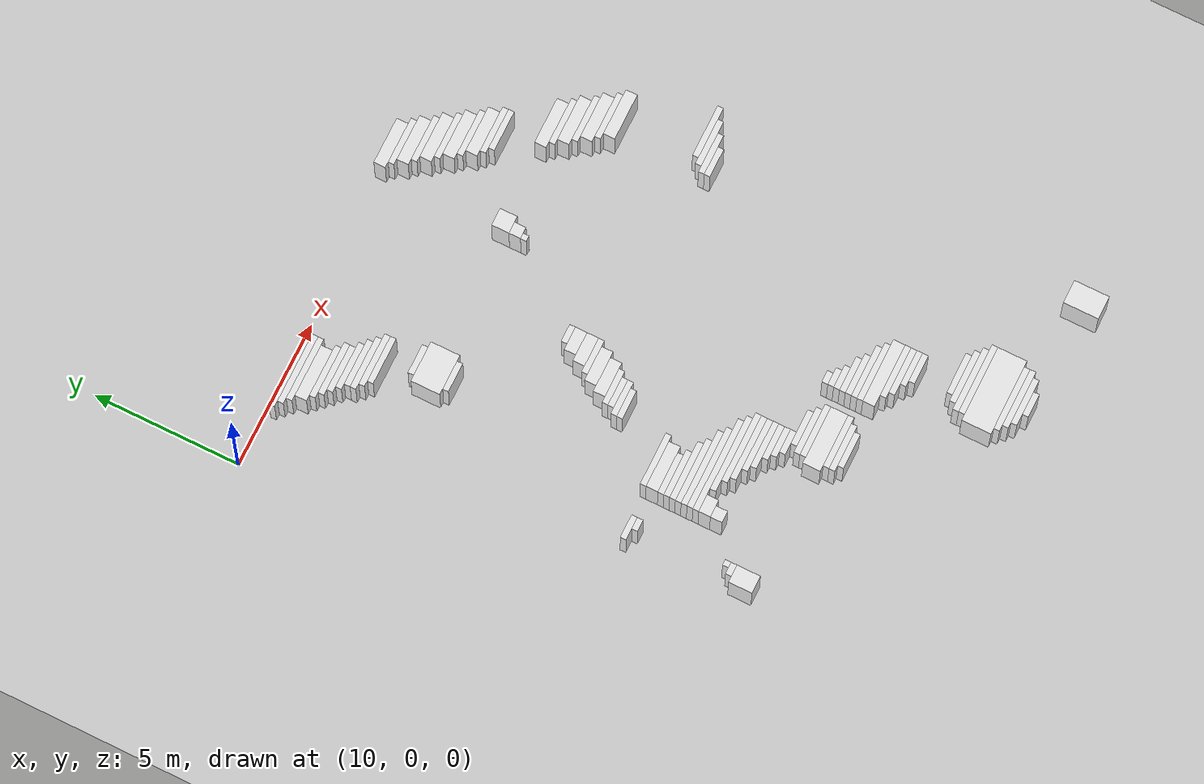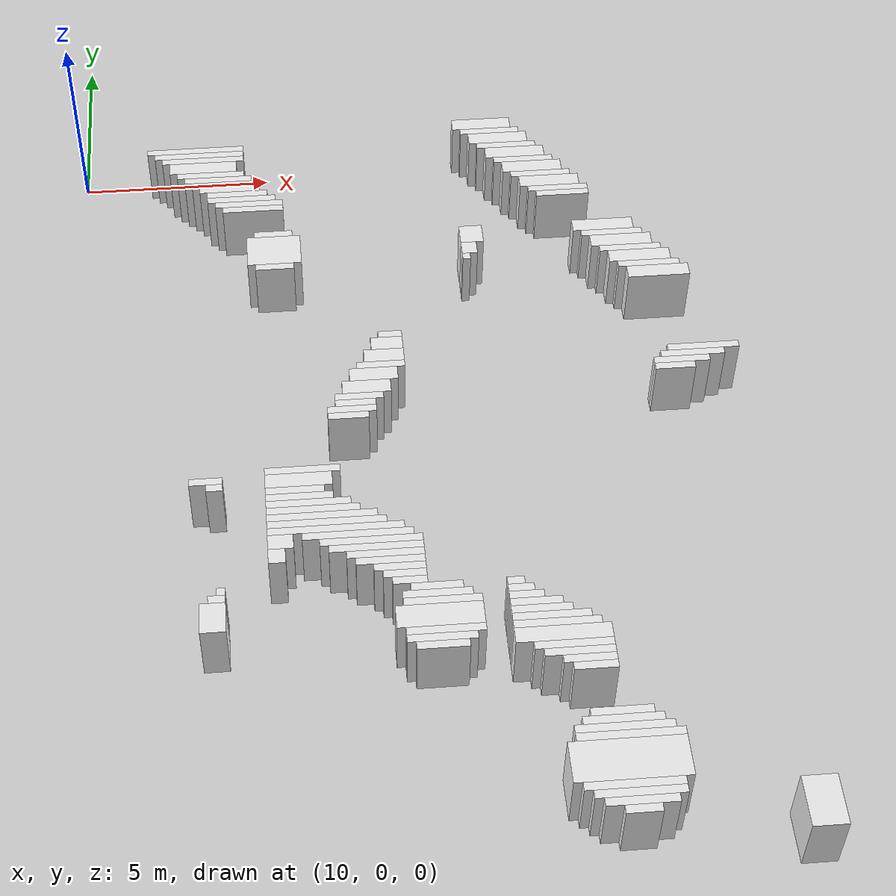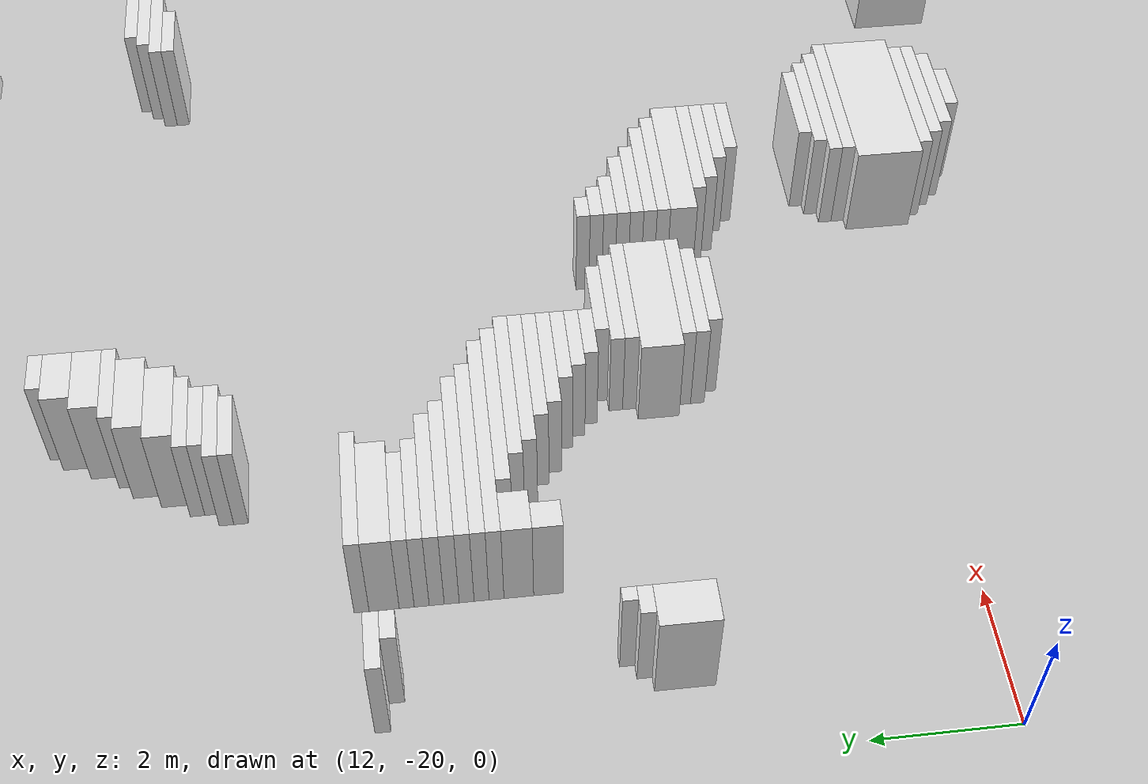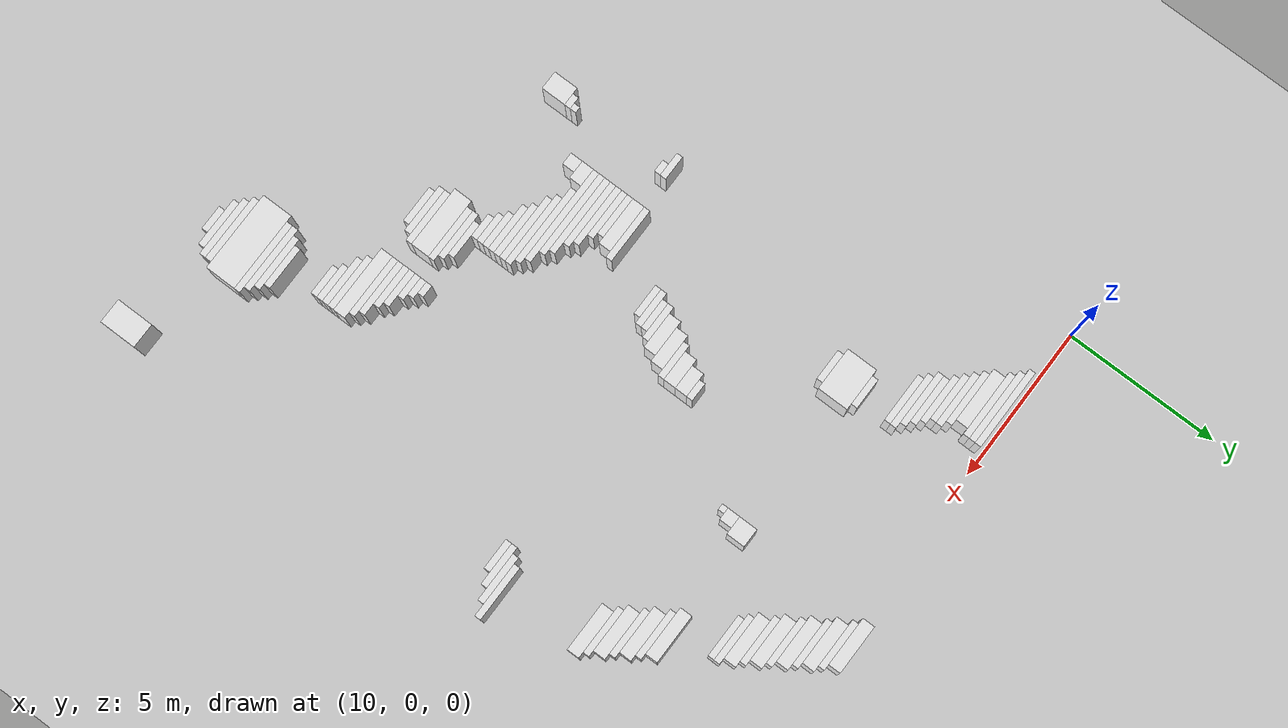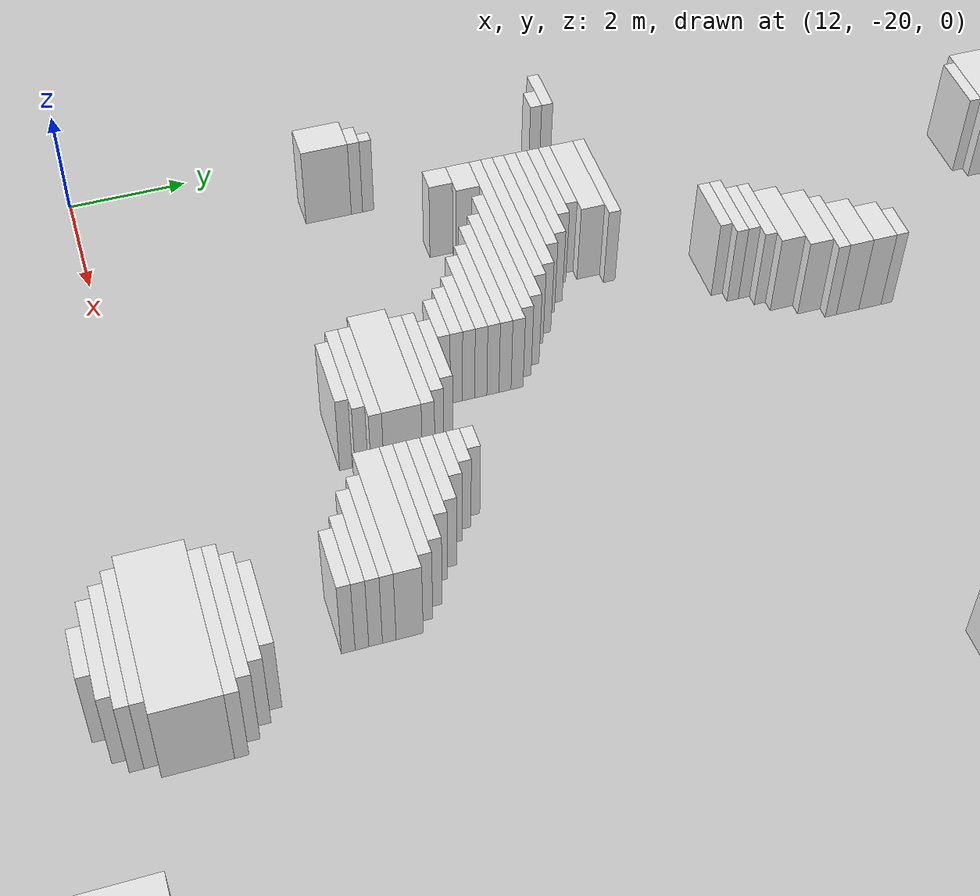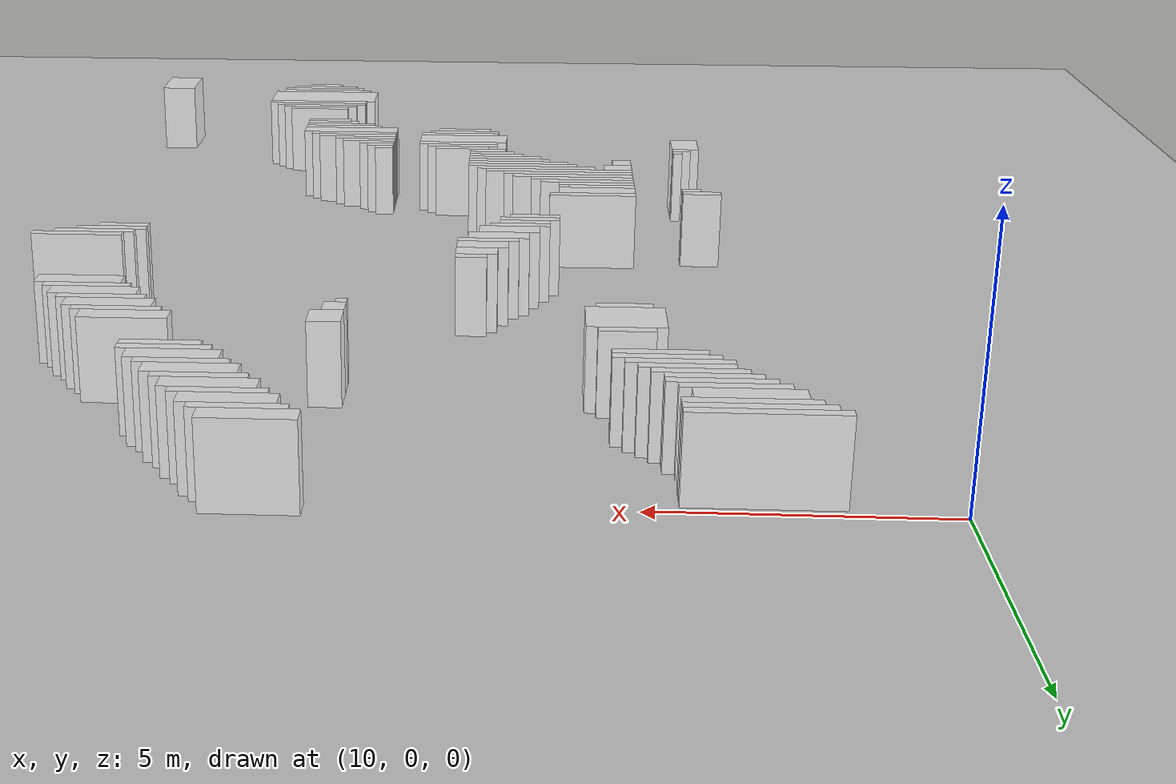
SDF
<sdf version="1.7">
 <world name="default">
  <model name="ground_plane">
   <static>1</static>
   <link name="link">
    <collision name="collision">
     <geometry><plane><normal>0 0 1</normal><size>120 120</size></plane></geometry>
    </collision>
    <visual name="visual">
     <geometry><plane><normal>0 0 1</normal><size>120 120</size></plane></geometry>
     <material>
      <script><uri>file://media/materials/scripts/gazebo.material</uri><name>Gazebo/Grey</name></script>
     </material>
    </visual>
   </link>
  </model>
  <model name="random_complex_03_model">
   <static>1</static>
   <link name="obs_1621">
    <pose>21.0000 0.2000 0.8000 0 0 0</pose>
    <collision name="obs_1621_col"><geometry><box><size>1.6000 0.4000 1.6000</size></box></geometry></collision>
    <visual name="obs_1621_vis">
     <geometry><box><size>1.6000 0.4000 1.6000</size></box></geometry>
     <material>
      <script><uri>file://media/materials/scripts/gazebo.material</uri><name>Gazebo/White</name></script>
     </material>
    </visual>
   </link>
   <link name="obs_1634">
    <pose>21.2000 -0.1000 0.8000 0 0 0</pose>
    <collision name="obs_1634_col"><geometry><box><size>1.6000 0.2000 1.6000</size></box></geometry></collision>
    <visual name="obs_1634_vis">
     <geometry><box><size>1.6000 0.2000 1.6000</size></box></geometry>
     <material>
      <script><uri>file://media/materials/scripts/gazebo.material</uri><name>Gazebo/White</name></script>
     </material>
    </visual>
   </link>
   <link name="obs_1642">
    <pose>13.1000 -0.3000 0.8000 0 0 0</pose>
    <collision name="obs_1642_col"><geometry><box><size>2.6000 0.2000 1.6000</size></box></geometry></collision>
    <visual name="obs_1642_vis">
     <geometry><box><size>2.6000 0.2000 1.6000</size></box></geometry>
     <material>
      <script><uri>file://media/materials/scripts/gazebo.material</uri><name>Gazebo/White</name></script>
     </material>
    </visual>
   </link>
   <link name="obs_1645">
    <pose>21.4000 -0.4000 0.8000 0 0 0</pose>
    <collision name="obs_1645_col"><geometry><box><size>1.6000 0.4000 1.6000</size></box></geometry></collision>
    <visual name="obs_1645_vis">
     <geometry><box><size>1.6000 0.4000 1.6000</size></box></geometry>
     <material>
      <script><uri>file://media/materials/scripts/gazebo.material</uri><name>Gazebo/White</name></script>
     </material>
    </visual>
   </link>
   <link name="obs_1651">
    <pose>13.2000 -0.5000 0.8000 0 0 0</pose>
    <collision name="obs_1651_col"><geometry><box><size>2.4000 0.2000 1.6000</size></box></geometry></collision>
    <visual name="obs_1651_vis">
     <geometry><box><size>2.4000 0.2000 1.6000</size></box></geometry>
     <material>
      <script><uri>file://media/materials/scripts/gazebo.material</uri><name>Gazebo/White</name></script>
     </material>
    </visual>
   </link>
   <link name="obs_1659">
    <pose>13.3000 -0.7000 0.8000 0 0 0</pose>
    <collision name="obs_1659_col"><geometry><box><size>2.2000 0.2000 1.6000</size></box></geometry></collision>
    <visual name="obs_1659_vis">
     <geometry><box><size>2.2000 0.2000 1.6000</size></box></geometry>
     <material>
      <script><uri>file://media/materials/scripts/gazebo.material</uri><name>Gazebo/White</name></script>
     </material>
    </visual>
   </link>
   <link name="obs_1660">
    <pose>21.6000 -0.7000 0.8000 0 0 0</pose>
    <collision name="obs_1660_col"><geometry><box><size>1.6000 0.2000 1.6000</size></box></geometry></collision>
    <visual name="obs_1660_vis">
     <geometry><box><size>1.6000 0.2000 1.6000</size></box></geometry>
     <material>
      <script><uri>file://media/materials/scripts/gazebo.material</uri><name>Gazebo/White</name></script>
     </material>
    </visual>
   </link>
   <link name="obs_1673">
    <pose>13.3000 -1.0000 0.8000 0 0 0</pose>
    <collision name="obs_1673_col"><geometry><box><size>1.8000 0.4000 1.6000</size></box></geometry></collision>
    <visual name="obs_1673_vis">
     <geometry><box><size>1.8000 0.4000 1.6000</size></box></geometry>
     <material>
      <script><uri>file://media/materials/scripts/gazebo.material</uri><name>Gazebo/White</name></script>
     </material>
    </visual>
   </link>
   <link name="obs_1674">
    <pose>21.8000 -1.0000 0.8000 0 0 0</pose>
    <collision name="obs_1674_col"><geometry><box><size>1.6000 0.4000 1.6000</size></box></geometry></collision>
    <visual name="obs_1674_vis">
     <geometry><box><size>1.6000 0.4000 1.6000</size></box></geometry>
     <material>
      <script><uri>file://media/materials/scripts/gazebo.material</uri><name>Gazebo/White</name></script>
     </material>
    </visual>
   </link>
   <link name="obs_1689">
    <pose>13.5000 -1.3000 0.8000 0 0 0</pose>
    <collision name="obs_1689_col"><geometry><box><size>1.8000 0.2000 1.6000</size></box></geometry></collision>
    <visual name="obs_1689_vis">
     <geometry><box><size>1.8000 0.2000 1.6000</size></box></geometry>
     <material>
      <script><uri>file://media/materials/scripts/gazebo.material</uri><name>Gazebo/White</name></script>
     </material>
    </visual>
   </link>
   <link name="obs_1690">
    <pose>22.0000 -1.3000 0.8000 0 0 0</pose>
    <collision name="obs_1690_col"><geometry><box><size>1.6000 0.2000 1.6000</size></box></geometry></collision>
    <visual name="obs_1690_vis">
     <geometry><box><size>1.6000 0.2000 1.6000</size></box></geometry>
     <material>
      <script><uri>file://media/materials/scripts/gazebo.material</uri><name>Gazebo/White</name></script>
     </material>
    </visual>
   </link>
   <link name="obs_1701">
    <pose>13.7000 -1.5000 0.8000 0 0 0</pose>
    <collision name="obs_1701_col"><geometry><box><size>1.8000 0.2000 1.6000</size></box></geometry></collision>
    <visual name="obs_1701_vis">
     <geometry><box><size>1.8000 0.2000 1.6000</size></box></geometry>
     <material>
      <script><uri>file://media/materials/scripts/gazebo.material</uri><name>Gazebo/White</name></script>
     </material>
    </visual>
   </link>
   <link name="obs_1706">
    <pose>22.2000 -1.6000 0.8000 0 0 0</pose>
    <collision name="obs_1706_col"><geometry><box><size>1.6000 0.4000 1.6000</size></box></geometry></collision>
    <visual name="obs_1706_vis">
     <geometry><box><size>1.6000 0.4000 1.6000</size></box></geometry>
     <material>
      <script><uri>file://media/materials/scripts/gazebo.material</uri><name>Gazebo/White</name></script>
     </material>
    </visual>
   </link>
   <link name="obs_1711">
    <pose>13.8000 -1.7000 0.8000 0 0 0</pose>
    <collision name="obs_1711_col"><geometry><box><size>1.6000 0.2000 1.6000</size></box></geometry></collision>
    <visual name="obs_1711_vis">
     <geometry><box><size>1.6000 0.2000 1.6000</size></box></geometry>
     <material>
      <script><uri>file://media/materials/scripts/gazebo.material</uri><name>Gazebo/White</name></script>
     </material>
    </visual>
   </link>
   <link name="obs_1718">
    <pose>14.0000 -1.9000 0.8000 0 0 0</pose>
    <collision name="obs_1718_col"><geometry><box><size>1.6000 0.2000 1.6000</size></box></geometry></collision>
    <visual name="obs_1718_vis">
     <geometry><box><size>1.6000 0.2000 1.6000</size></box></geometry>
     <material>
      <script><uri>file://media/materials/scripts/gazebo.material</uri><name>Gazebo/White</name></script>
     </material>
    </visual>
   </link>
   <link name="obs_1719">
    <pose>22.4000 -1.9000 0.8000 0 0 0</pose>
    <collision name="obs_1719_col"><geometry><box><size>1.6000 0.2000 1.6000</size></box></geometry></collision>
    <visual name="obs_1719_vis">
     <geometry><box><size>1.6000 0.2000 1.6000</size></box></geometry>
     <material>
      <script><uri>file://media/materials/scripts/gazebo.material</uri><name>Gazebo/White</name></script>
     </material>
    </visual>
   </link>
   <link name="obs_1727">
    <pose>14.2000 -2.1000 0.8000 0 0 0</pose>
    <collision name="obs_1727_col"><geometry><box><size>1.6000 0.2000 1.6000</size></box></geometry></collision>
    <visual name="obs_1727_vis">
     <geometry><box><size>1.6000 0.2000 1.6000</size></box></geometry>
     <material>
      <script><uri>file://media/materials/scripts/gazebo.material</uri><name>Gazebo/White</name></script>
     </material>
    </visual>
   </link>
   <link name="obs_1732">
    <pose>22.6000 -2.2000 0.8000 0 0 0</pose>
    <collision name="obs_1732_col"><geometry><box><size>1.6000 0.4000 1.6000</size></box></geometry></collision>
    <visual name="obs_1732_vis">
     <geometry><box><size>1.6000 0.4000 1.6000</size></box></geometry>
     <material>
      <script><uri>file://media/materials/scripts/gazebo.material</uri><name>Gazebo/White</name></script>
     </material>
    </visual>
   </link>
   <link name="obs_1737">
    <pose>14.3000 -2.3000 0.8000 0 0 0</pose>
    <collision name="obs_1737_col"><geometry><box><size>1.8000 0.2000 1.6000</size></box></geometry></collision>
    <visual name="obs_1737_vis">
     <geometry><box><size>1.8000 0.2000 1.6000</size></box></geometry>
     <material>
      <script><uri>file://media/materials/scripts/gazebo.material</uri><name>Gazebo/White</name></script>
     </material>
    </visual>
   </link>
   <link name="obs_1746">
    <pose>14.5000 -2.5000 0.8000 0 0 0</pose>
    <collision name="obs_1746_col"><geometry><box><size>1.8000 0.2000 1.6000</size></box></geometry></collision>
    <visual name="obs_1746_vis">
     <geometry><box><size>1.8000 0.2000 1.6000</size></box></geometry>
     <material>
      <script><uri>file://media/materials/scripts/gazebo.material</uri><name>Gazebo/White</name></script>
     </material>
    </visual>
   </link>
   <link name="obs_1747">
    <pose>22.8000 -2.5000 0.8000 0 0 0</pose>
    <collision name="obs_1747_col"><geometry><box><size>1.6000 0.2000 1.6000</size></box></geometry></collision>
    <visual name="obs_1747_vis">
     <geometry><box><size>1.6000 0.2000 1.6000</size></box></geometry>
     <material>
      <script><uri>file://media/materials/scripts/gazebo.material</uri><name>Gazebo/White</name></script>
     </material>
    </visual>
   </link>
   <link name="obs_1753">
    <pose>14.6000 -2.7000 0.8000 0 0 0</pose>
    <collision name="obs_1753_col"><geometry><box><size>1.6000 0.2000 1.6000</size></box></geometry></collision>
    <visual name="obs_1753_vis">
     <geometry><box><size>1.6000 0.2000 1.6000</size></box></geometry>
     <material>
      <script><uri>file://media/materials/scripts/gazebo.material</uri><name>Gazebo/White</name></script>
     </material>
    </visual>
   </link>
   <link name="obs_1754">
    <pose>22.9000 -2.7000 0.8000 0 0 0</pose>
    <collision name="obs_1754_col"><geometry><box><size>1.4000 0.2000 1.6000</size></box></geometry></collision>
    <visual name="obs_1754_vis">
     <geometry><box><size>1.4000 0.2000 1.6000</size></box></geometry>
     <material>
      <script><uri>file://media/materials/scripts/gazebo.material</uri><name>Gazebo/White</name></script>
     </material>
    </visual>
   </link>
   <link name="obs_1779">
    <pose>15.1000 -3.7000 0.8000 0 0 0</pose>
    <collision name="obs_1779_col"><geometry><box><size>1.0000 0.2000 1.6000</size></box></geometry></collision>
    <visual name="obs_1779_vis">
     <geometry><box><size>1.0000 0.2000 1.6000</size></box></geometry>
     <material>
      <script><uri>file://media/materials/scripts/gazebo.material</uri><name>Gazebo/White</name></script>
     </material>
    </visual>
   </link>
   <link name="obs_1784">
    <pose>23.8000 -4.0000 0.8000 0 0 0</pose>
    <collision name="obs_1784_col"><geometry><box><size>1.6000 0.4000 1.6000</size></box></geometry></collision>
    <visual name="obs_1784_vis">
     <geometry><box><size>1.6000 0.4000 1.6000</size></box></geometry>
     <material>
      <script><uri>file://media/materials/scripts/gazebo.material</uri><name>Gazebo/White</name></script>
     </material>
    </visual>
   </link>
   <link name="obs_1788">
    <pose>20.3000 -4.1000 0.8000 0 0 0</pose>
    <collision name="obs_1788_col"><geometry><box><size>0.6000 0.6000 1.6000</size></box></geometry></collision>
    <visual name="obs_1788_vis">
     <geometry><box><size>0.6000 0.6000 1.6000</size></box></geometry>
     <material>
      <script><uri>file://media/materials/scripts/gazebo.material</uri><name>Gazebo/White</name></script>
     </material>
    </visual>
   </link>
   <link name="obs_1789">
    <pose>24.0000 -4.3000 0.8000 0 0 0</pose>
    <collision name="obs_1789_col"><geometry><box><size>1.6000 0.2000 1.6000</size></box></geometry></collision>
    <visual name="obs_1789_vis">
     <geometry><box><size>1.6000 0.2000 1.6000</size></box></geometry>
     <material>
      <script><uri>file://media/materials/scripts/gazebo.material</uri><name>Gazebo/White</name></script>
     </material>
    </visual>
   </link>
   <link name="obs_1797">
    <pose>15.1000 -4.3000 0.8000 0 0 0</pose>
    <collision name="obs_1797_col"><geometry><box><size>1.4000 1.0000 1.6000</size></box></geometry></collision>
    <visual name="obs_1797_vis">
     <geometry><box><size>1.4000 1.0000 1.6000</size></box></geometry>
     <material>
      <script><uri>file://media/materials/scripts/gazebo.material</uri><name>Gazebo/White</name></script>
     </material>
    </visual>
   </link>
   <link name="obs_1800">
    <pose>20.2000 -4.6000 0.8000 0 0 0</pose>
    <collision name="obs_1800_col"><geometry><box><size>0.4000 0.4000 1.6000</size></box></geometry></collision>
    <visual name="obs_1800_vis">
     <geometry><box><size>0.4000 0.4000 1.6000</size></box></geometry>
     <material>
      <script><uri>file://media/materials/scripts/gazebo.material</uri><name>Gazebo/White</name></script>
     </material>
    </visual>
   </link>
   <link name="obs_1801">
    <pose>24.2000 -4.6000 0.8000 0 0 0</pose>
    <collision name="obs_1801_col"><geometry><box><size>1.6000 0.4000 1.6000</size></box></geometry></collision>
    <visual name="obs_1801_vis">
     <geometry><box><size>1.6000 0.4000 1.6000</size></box></geometry>
     <material>
      <script><uri>file://media/materials/scripts/gazebo.material</uri><name>Gazebo/White</name></script>
     </material>
    </visual>
   </link>
   <link name="obs_1811">
    <pose>15.1000 -4.9000 0.8000 0 0 0</pose>
    <collision name="obs_1811_col"><geometry><box><size>1.0000 0.2000 1.6000</size></box></geometry></collision>
    <visual name="obs_1811_vis">
     <geometry><box><size>1.0000 0.2000 1.6000</size></box></geometry>
     <material>
      <script><uri>file://media/materials/scripts/gazebo.material</uri><name>Gazebo/White</name></script>
     </material>
    </visual>
   </link>
   <link name="obs_1812">
    <pose>20.1000 -4.9000 0.8000 0 0 0</pose>
    <collision name="obs_1812_col"><geometry><box><size>0.2000 0.2000 1.6000</size></box></geometry></collision>
    <visual name="obs_1812_vis">
     <geometry><box><size>0.2000 0.2000 1.6000</size></box></geometry>
     <material>
      <script><uri>file://media/materials/scripts/gazebo.material</uri><name>Gazebo/White</name></script>
     </material>
    </visual>
   </link>
   <link name="obs_1813">
    <pose>24.4000 -4.9000 0.8000 0 0 0</pose>
    <collision name="obs_1813_col"><geometry><box><size>1.6000 0.2000 1.6000</size></box></geometry></collision>
    <visual name="obs_1813_vis">
     <geometry><box><size>1.6000 0.2000 1.6000</size></box></geometry>
     <material>
      <script><uri>file://media/materials/scripts/gazebo.material</uri><name>Gazebo/White</name></script>
     </material>
    </visual>
   </link>
   <link name="obs_1818">
    <pose>24.6000 -5.2000 0.8000 0 0 0</pose>
    <collision name="obs_1818_col"><geometry><box><size>1.6000 0.4000 1.6000</size></box></geometry></collision>
    <visual name="obs_1818_vis">
     <geometry><box><size>1.6000 0.4000 1.6000</size></box></geometry>
     <material>
      <script><uri>file://media/materials/scripts/gazebo.material</uri><name>Gazebo/White</name></script>
     </material>
    </visual>
   </link>
   <link name="obs_1824">
    <pose>24.8000 -5.5000 0.8000 0 0 0</pose>
    <collision name="obs_1824_col"><geometry><box><size>1.6000 0.2000 1.6000</size></box></geometry></collision>
    <visual name="obs_1824_vis">
     <geometry><box><size>1.6000 0.2000 1.6000</size></box></geometry>
     <material>
      <script><uri>file://media/materials/scripts/gazebo.material</uri><name>Gazebo/White</name></script>
     </material>
    </visual>
   </link>
   <link name="obs_1830">
    <pose>25.0000 -5.8000 0.8000 0 0 0</pose>
    <collision name="obs_1830_col"><geometry><box><size>1.6000 0.4000 1.6000</size></box></geometry></collision>
    <visual name="obs_1830_vis">
     <geometry><box><size>1.6000 0.4000 1.6000</size></box></geometry>
     <material>
      <script><uri>file://media/materials/scripts/gazebo.material</uri><name>Gazebo/White</name></script>
     </material>
    </visual>
   </link>
   <link name="obs_1874">
    <pose>17.9000 -7.5000 0.8000 0 0 0</pose>
    <collision name="obs_1874_col"><geometry><box><size>0.6000 0.2000 1.6000</size></box></geometry></collision>
    <visual name="obs_1874_vis">
     <geometry><box><size>0.6000 0.2000 1.6000</size></box></geometry>
     <material>
      <script><uri>file://media/materials/scripts/gazebo.material</uri><name>Gazebo/White</name></script>
     </material>
    </visual>
   </link>
   <link name="obs_1886">
    <pose>17.8000 -7.8000 0.8000 0 0 0</pose>
    <collision name="obs_1886_col"><geometry><box><size>0.8000 0.4000 1.6000</size></box></geometry></collision>
    <visual name="obs_1886_vis">
     <geometry><box><size>0.8000 0.4000 1.6000</size></box></geometry>
     <material>
      <script><uri>file://media/materials/scripts/gazebo.material</uri><name>Gazebo/White</name></script>
     </material>
    </visual>
   </link>
   <link name="obs_1897">
    <pose>17.7000 -8.2000 0.8000 0 0 0</pose>
    <collision name="obs_1897_col"><geometry><box><size>1.0000 0.4000 1.6000</size></box></geometry></collision>
    <visual name="obs_1897_vis">
     <geometry><box><size>1.0000 0.4000 1.6000</size></box></geometry>
     <material>
      <script><uri>file://media/materials/scripts/gazebo.material</uri><name>Gazebo/White</name></script>
     </material>
    </visual>
   </link>
   <link name="obs_1905">
    <pose>17.6000 -8.5000 0.8000 0 0 0</pose>
    <collision name="obs_1905_col"><geometry><box><size>1.2000 0.2000 1.6000</size></box></geometry></collision>
    <visual name="obs_1905_vis">
     <geometry><box><size>1.2000 0.2000 1.6000</size></box></geometry>
     <material>
      <script><uri>file://media/materials/scripts/gazebo.material</uri><name>Gazebo/White</name></script>
     </material>
    </visual>
   </link>
   <link name="obs_1906">
    <pose>25.7000 -8.5000 0.8000 0 0 0</pose>
    <collision name="obs_1906_col"><geometry><box><size>1.8000 0.2000 1.6000</size></box></geometry></collision>
    <visual name="obs_1906_vis">
     <geometry><box><size>1.8000 0.2000 1.6000</size></box></geometry>
     <material>
      <script><uri>file://media/materials/scripts/gazebo.material</uri><name>Gazebo/White</name></script>
     </material>
    </visual>
   </link>
   <link name="obs_1912">
    <pose>25.4000 -8.7000 0.8000 0 0 0</pose>
    <collision name="obs_1912_col"><geometry><box><size>1.6000 0.2000 1.6000</size></box></geometry></collision>
    <visual name="obs_1912_vis">
     <geometry><box><size>1.6000 0.2000 1.6000</size></box></geometry>
     <material>
      <script><uri>file://media/materials/scripts/gazebo.material</uri><name>Gazebo/White</name></script>
     </material>
    </visual>
   </link>
   <link name="obs_1916">
    <pose>17.4000 -8.8000 0.8000 0 0 0</pose>
    <collision name="obs_1916_col"><geometry><box><size>1.2000 0.4000 1.6000</size></box></geometry></collision>
    <visual name="obs_1916_vis">
     <geometry><box><size>1.2000 0.4000 1.6000</size></box></geometry>
     <material>
      <script><uri>file://media/materials/scripts/gazebo.material</uri><name>Gazebo/White</name></script>
     </material>
    </visual>
   </link>
   <link name="obs_1919">
    <pose>25.1000 -8.9000 0.8000 0 0 0</pose>
    <collision name="obs_1919_col"><geometry><box><size>1.4000 0.2000 1.6000</size></box></geometry></collision>
    <visual name="obs_1919_vis">
     <geometry><box><size>1.4000 0.2000 1.6000</size></box></geometry>
     <material>
      <script><uri>file://media/materials/scripts/gazebo.material</uri><name>Gazebo/White</name></script>
     </material>
    </visual>
   </link>
   <link name="obs_1929">
    <pose>24.9000 -9.1000 0.8000 0 0 0</pose>
    <collision name="obs_1929_col"><geometry><box><size>1.0000 0.2000 1.6000</size></box></geometry></collision>
    <visual name="obs_1929_vis">
     <geometry><box><size>1.0000 0.2000 1.6000</size></box></geometry>
     <material>
      <script><uri>file://media/materials/scripts/gazebo.material</uri><name>Gazebo/White</name></script>
     </material>
    </visual>
   </link>
   <link name="obs_1931">
    <pose>17.2000 -9.2000 0.8000 0 0 0</pose>
    <collision name="obs_1931_col"><geometry><box><size>1.2000 0.4000 1.6000</size></box></geometry></collision>
    <visual name="obs_1931_vis">
     <geometry><box><size>1.2000 0.4000 1.6000</size></box></geometry>
     <material>
      <script><uri>file://media/materials/scripts/gazebo.material</uri><name>Gazebo/White</name></script>
     </material>
    </visual>
   </link>
   <link name="obs_1944">
    <pose>17.0000 -9.5000 0.8000 0 0 0</pose>
    <collision name="obs_1944_col"><geometry><box><size>1.2000 0.2000 1.6000</size></box></geometry></collision>
    <visual name="obs_1944_vis">
     <geometry><box><size>1.2000 0.2000 1.6000</size></box></geometry>
     <material>
      <script><uri>file://media/materials/scripts/gazebo.material</uri><name>Gazebo/White</name></script>
     </material>
    </visual>
   </link>
   <link name="obs_1950">
    <pose>16.9000 -9.7000 0.8000 0 0 0</pose>
    <collision name="obs_1950_col"><geometry><box><size>1.0000 0.2000 1.6000</size></box></geometry></collision>
    <visual name="obs_1950_vis">
     <geometry><box><size>1.0000 0.2000 1.6000</size></box></geometry>
     <material>
      <script><uri>file://media/materials/scripts/gazebo.material</uri><name>Gazebo/White</name></script>
     </material>
    </visual>
   </link>
   <link name="obs_1958">
    <pose>16.8000 -9.9000 0.8000 0 0 0</pose>
    <collision name="obs_1958_col"><geometry><box><size>1.2000 0.2000 1.6000</size></box></geometry></collision>
    <visual name="obs_1958_vis">
     <geometry><box><size>1.2000 0.2000 1.6000</size></box></geometry>
     <material>
      <script><uri>file://media/materials/scripts/gazebo.material</uri><name>Gazebo/White</name></script>
     </material>
    </visual>
   </link>
   <link name="obs_1969">
    <pose>16.7000 -10.1000 0.8000 0 0 0</pose>
    <collision name="obs_1969_col"><geometry><box><size>1.0000 0.2000 1.6000</size></box></geometry></collision>
    <visual name="obs_1969_vis">
     <geometry><box><size>1.0000 0.2000 1.6000</size></box></geometry>
     <material>
      <script><uri>file://media/materials/scripts/gazebo.material</uri><name>Gazebo/White</name></script>
     </material>
    </visual>
   </link>
   <link name="obs_1995">
    <pose>15.5000 -11.7000 0.8000 0 0 0</pose>
    <collision name="obs_1995_col"><geometry><box><size>1.8000 0.2000 1.6000</size></box></geometry></collision>
    <visual name="obs_1995_vis">
     <geometry><box><size>1.8000 0.2000 1.6000</size></box></geometry>
     <material>
      <script><uri>file://media/materials/scripts/gazebo.material</uri><name>Gazebo/White</name></script>
     </material>
    </visual>
   </link>
   <link name="obs_2003">
    <pose>13.2000 -11.9000 0.8000 0 0 0</pose>
    <collision name="obs_2003_col"><geometry><box><size>0.8000 0.2000 1.6000</size></box></geometry></collision>
    <visual name="obs_2003_vis">
     <geometry><box><size>0.8000 0.2000 1.6000</size></box></geometry>
     <material>
      <script><uri>file://media/materials/scripts/gazebo.material</uri><name>Gazebo/White</name></script>
     </material>
    </visual>
   </link>
   <link name="obs_2006">
    <pose>15.4000 -12.0000 0.8000 0 0 0</pose>
    <collision name="obs_2006_col"><geometry><box><size>1.6000 0.4000 1.6000</size></box></geometry></collision>
    <visual name="obs_2006_vis">
     <geometry><box><size>1.6000 0.4000 1.6000</size></box></geometry>
     <material>
      <script><uri>file://media/materials/scripts/gazebo.material</uri><name>Gazebo/White</name></script>
     </material>
    </visual>
   </link>
   <link name="obs_2013">
    <pose>13.4000 -12.1000 0.8000 0 0 0</pose>
    <collision name="obs_2013_col"><geometry><box><size>0.4000 0.2000 1.6000</size></box></geometry></collision>
    <visual name="obs_2013_vis">
     <geometry><box><size>0.4000 0.2000 1.6000</size></box></geometry>
     <material>
      <script><uri>file://media/materials/scripts/gazebo.material</uri><name>Gazebo/White</name></script>
     </material>
    </visual>
   </link>
   <link name="obs_2022">
    <pose>15.3000 -12.3000 0.8000 0 0 0</pose>
    <collision name="obs_2022_col"><geometry><box><size>1.4000 0.2000 1.6000</size></box></geometry></collision>
    <visual name="obs_2022_vis">
     <geometry><box><size>1.4000 0.2000 1.6000</size></box></geometry>
     <material>
      <script><uri>file://media/materials/scripts/gazebo.material</uri><name>Gazebo/White</name></script>
     </material>
    </visual>
   </link>
   <link name="obs_2029">
    <pose>15.4000 -12.5000 0.8000 0 0 0</pose>
    <collision name="obs_2029_col"><geometry><box><size>1.6000 0.2000 1.6000</size></box></geometry></collision>
    <visual name="obs_2029_vis">
     <geometry><box><size>1.6000 0.2000 1.6000</size></box></geometry>
     <material>
      <script><uri>file://media/materials/scripts/gazebo.material</uri><name>Gazebo/White</name></script>
     </material>
    </visual>
   </link>
   <link name="obs_2041">
    <pose>15.6000 -12.7000 0.8000 0 0 0</pose>
    <collision name="obs_2041_col"><geometry><box><size>2.0000 0.2000 1.6000</size></box></geometry></collision>
    <visual name="obs_2041_vis">
     <geometry><box><size>2.0000 0.2000 1.6000</size></box></geometry>
     <material>
      <script><uri>file://media/materials/scripts/gazebo.material</uri><name>Gazebo/White</name></script>
     </material>
    </visual>
   </link>
   <link name="obs_2049">
    <pose>15.7000 -12.9000 0.8000 0 0 0</pose>
    <collision name="obs_2049_col"><geometry><box><size>2.2000 0.2000 1.6000</size></box></geometry></collision>
    <visual name="obs_2049_vis">
     <geometry><box><size>2.2000 0.2000 1.6000</size></box></geometry>
     <material>
      <script><uri>file://media/materials/scripts/gazebo.material</uri><name>Gazebo/White</name></script>
     </material>
    </visual>
   </link>
   <link name="obs_2056">
    <pose>15.9000 -13.1000 0.8000 0 0 0</pose>
    <collision name="obs_2056_col"><geometry><box><size>2.6000 0.2000 1.6000</size></box></geometry></collision>
    <visual name="obs_2056_vis">
     <geometry><box><size>2.6000 0.2000 1.6000</size></box></geometry>
     <material>
      <script><uri>file://media/materials/scripts/gazebo.material</uri><name>Gazebo/White</name></script>
     </material>
    </visual>
   </link>
   <link name="obs_2062">
    <pose>16.0000 -13.3000 0.8000 0 0 0</pose>
    <collision name="obs_2062_col"><geometry><box><size>2.8000 0.2000 1.6000</size></box></geometry></collision>
    <visual name="obs_2062_vis">
     <geometry><box><size>2.8000 0.2000 1.6000</size></box></geometry>
     <material>
      <script><uri>file://media/materials/scripts/gazebo.material</uri><name>Gazebo/White</name></script>
     </material>
    </visual>
   </link>
   <link name="obs_2069">
    <pose>16.2000 -13.5000 0.8000 0 0 0</pose>
    <collision name="obs_2069_col"><geometry><box><size>3.2000 0.2000 1.6000</size></box></geometry></collision>
    <visual name="obs_2069_vis">
     <geometry><box><size>3.2000 0.2000 1.6000</size></box></geometry>
     <material>
      <script><uri>file://media/materials/scripts/gazebo.material</uri><name>Gazebo/White</name></script>
     </material>
    </visual>
   </link>
   <link name="obs_2075">
    <pose>16.7000 -13.7000 0.8000 0 0 0</pose>
    <collision name="obs_2075_col"><geometry><box><size>2.6000 0.2000 1.6000</size></box></geometry></collision>
    <visual name="obs_2075_vis">
     <geometry><box><size>2.6000 0.2000 1.6000</size></box></geometry>
     <material>
      <script><uri>file://media/materials/scripts/gazebo.material</uri><name>Gazebo/White</name></script>
     </material>
    </visual>
   </link>
   <link name="obs_2079">
    <pose>14.9000 -13.8000 0.8000 0 0 0</pose>
    <collision name="obs_2079_col"><geometry><box><size>0.6000 0.4000 1.6000</size></box></geometry></collision>
    <visual name="obs_2079_vis">
     <geometry><box><size>0.6000 0.4000 1.6000</size></box></geometry>
     <material>
      <script><uri>file://media/materials/scripts/gazebo.material</uri><name>Gazebo/White</name></script>
     </material>
    </visual>
   </link>
   <link name="obs_2085">
    <pose>17.0000 -13.9000 0.8000 0 0 0</pose>
    <collision name="obs_2085_col"><geometry><box><size>2.4000 0.2000 1.6000</size></box></geometry></collision>
    <visual name="obs_2085_vis">
     <geometry><box><size>2.4000 0.2000 1.6000</size></box></geometry>
     <material>
      <script><uri>file://media/materials/scripts/gazebo.material</uri><name>Gazebo/White</name></script>
     </material>
    </visual>
   </link>
   <link name="obs_2094">
    <pose>17.1000 -14.1000 0.8000 0 0 0</pose>
    <collision name="obs_2094_col"><geometry><box><size>2.2000 0.2000 1.6000</size></box></geometry></collision>
    <visual name="obs_2094_vis">
     <geometry><box><size>2.2000 0.2000 1.6000</size></box></geometry>
     <material>
      <script><uri>file://media/materials/scripts/gazebo.material</uri><name>Gazebo/White</name></script>
     </material>
    </visual>
   </link>
   <link name="obs_2096">
    <pose>14.8000 -14.2000 0.8000 0 0 0</pose>
    <collision name="obs_2096_col"><geometry><box><size>0.4000 0.4000 1.6000</size></box></geometry></collision>
    <visual name="obs_2096_vis">
     <geometry><box><size>0.4000 0.4000 1.6000</size></box></geometry>
     <material>
      <script><uri>file://media/materials/scripts/gazebo.material</uri><name>Gazebo/White</name></script>
     </material>
    </visual>
   </link>
   <link name="obs_2103">
    <pose>17.3000 -14.3000 0.8000 0 0 0</pose>
    <collision name="obs_2103_col"><geometry><box><size>1.8000 0.2000 1.6000</size></box></geometry></collision>
    <visual name="obs_2103_vis">
     <geometry><box><size>1.8000 0.2000 1.6000</size></box></geometry>
     <material>
      <script><uri>file://media/materials/scripts/gazebo.material</uri><name>Gazebo/White</name></script>
     </material>
    </visual>
   </link>
   <link name="obs_2109">
    <pose>17.4000 -14.5000 0.8000 0 0 0</pose>
    <collision name="obs_2109_col"><geometry><box><size>1.6000 0.2000 1.6000</size></box></geometry></collision>
    <visual name="obs_2109_vis">
     <geometry><box><size>1.6000 0.2000 1.6000</size></box></geometry>
     <material>
      <script><uri>file://media/materials/scripts/gazebo.material</uri><name>Gazebo/White</name></script>
     </material>
    </visual>
   </link>
   <link name="obs_2118">
    <pose>17.6000 -14.7000 0.8000 0 0 0</pose>
    <collision name="obs_2118_col"><geometry><box><size>1.2000 0.2000 1.6000</size></box></geometry></collision>
    <visual name="obs_2118_vis">
     <geometry><box><size>1.2000 0.2000 1.6000</size></box></geometry>
     <material>
      <script><uri>file://media/materials/scripts/gazebo.material</uri><name>Gazebo/White</name></script>
     </material>
    </visual>
   </link>
   <link name="obs_2123">
    <pose>17.7000 -14.9000 0.8000 0 0 0</pose>
    <collision name="obs_2123_col"><geometry><box><size>1.0000 0.2000 1.6000</size></box></geometry></collision>
    <visual name="obs_2123_vis">
     <geometry><box><size>1.0000 0.2000 1.6000</size></box></geometry>
     <material>
      <script><uri>file://media/materials/scripts/gazebo.material</uri><name>Gazebo/White</name></script>
     </material>
    </visual>
   </link>
   <link name="obs_2131">
    <pose>13.5000 -15.1000 0.8000 0 0 0</pose>
    <collision name="obs_2131_col"><geometry><box><size>0.2000 0.2000 1.6000</size></box></geometry></collision>
    <visual name="obs_2131_vis">
     <geometry><box><size>0.2000 0.2000 1.6000</size></box></geometry>
     <material>
      <script><uri>file://media/materials/scripts/gazebo.material</uri><name>Gazebo/White</name></script>
     </material>
    </visual>
   </link>
   <link name="obs_2132">
    <pose>17.8000 -15.1000 0.8000 0 0 0</pose>
    <collision name="obs_2132_col"><geometry><box><size>0.8000 0.2000 1.6000</size></box></geometry></collision>
    <visual name="obs_2132_vis">
     <geometry><box><size>0.8000 0.2000 1.6000</size></box></geometry>
     <material>
      <script><uri>file://media/materials/scripts/gazebo.material</uri><name>Gazebo/White</name></script>
     </material>
    </visual>
   </link>
   <link name="obs_2138">
    <pose>13.4000 -15.3000 0.8000 0 0 0</pose>
    <collision name="obs_2138_col"><geometry><box><size>0.4000 0.2000 1.6000</size></box></geometry></collision>
    <visual name="obs_2138_vis">
     <geometry><box><size>0.4000 0.2000 1.6000</size></box></geometry>
     <material>
      <script><uri>file://media/materials/scripts/gazebo.material</uri><name>Gazebo/White</name></script>
     </material>
    </visual>
   </link>
   <link name="obs_2139">
    <pose>18.4000 -15.3000 0.8000 0 0 0</pose>
    <collision name="obs_2139_col"><geometry><box><size>1.2000 0.2000 1.6000</size></box></geometry></collision>
    <visual name="obs_2139_vis">
     <geometry><box><size>1.2000 0.2000 1.6000</size></box></geometry>
     <material>
      <script><uri>file://media/materials/scripts/gazebo.material</uri><name>Gazebo/White</name></script>
     </material>
    </visual>
   </link>
   <link name="obs_2140">
    <pose>20.2000 -15.3000 0.8000 0 0 0</pose>
    <collision name="obs_2140_col"><geometry><box><size>0.4000 0.2000 1.6000</size></box></geometry></collision>
    <visual name="obs_2140_vis">
     <geometry><box><size>0.4000 0.2000 1.6000</size></box></geometry>
     <material>
      <script><uri>file://media/materials/scripts/gazebo.material</uri><name>Gazebo/White</name></script>
     </material>
    </visual>
   </link>
   <link name="obs_2149">
    <pose>18.4000 -15.5000 0.8000 0 0 0</pose>
    <collision name="obs_2149_col"><geometry><box><size>1.6000 0.2000 1.6000</size></box></geometry></collision>
    <visual name="obs_2149_vis">
     <geometry><box><size>1.6000 0.2000 1.6000</size></box></geometry>
     <material>
      <script><uri>file://media/materials/scripts/gazebo.material</uri><name>Gazebo/White</name></script>
     </material>
    </visual>
   </link>
   <link name="obs_2150">
    <pose>20.3000 -15.5000 0.8000 0 0 0</pose>
    <collision name="obs_2150_col"><geometry><box><size>0.6000 0.2000 1.6000</size></box></geometry></collision>
    <visual name="obs_2150_vis">
     <geometry><box><size>0.6000 0.2000 1.6000</size></box></geometry>
     <material>
      <script><uri>file://media/materials/scripts/gazebo.material</uri><name>Gazebo/White</name></script>
     </material>
    </visual>
   </link>
   <link name="obs_2159">
    <pose>18.5000 -15.7000 0.8000 0 0 0</pose>
    <collision name="obs_2159_col"><geometry><box><size>1.8000 0.2000 1.6000</size></box></geometry></collision>
    <visual name="obs_2159_vis">
     <geometry><box><size>1.8000 0.2000 1.6000</size></box></geometry>
     <material>
      <script><uri>file://media/materials/scripts/gazebo.material</uri><name>Gazebo/White</name></script>
     </material>
    </visual>
   </link>
   <link name="obs_2160">
    <pose>20.4000 -15.7000 0.8000 0 0 0</pose>
    <collision name="obs_2160_col"><geometry><box><size>0.8000 0.2000 1.6000</size></box></geometry></collision>
    <visual name="obs_2160_vis">
     <geometry><box><size>0.8000 0.2000 1.6000</size></box></geometry>
     <material>
      <script><uri>file://media/materials/scripts/gazebo.material</uri><name>Gazebo/White</name></script>
     </material>
    </visual>
   </link>
   <link name="obs_2171">
    <pose>20.6000 -15.9000 0.8000 0 0 0</pose>
    <collision name="obs_2171_col"><geometry><box><size>1.2000 0.2000 1.6000</size></box></geometry></collision>
    <visual name="obs_2171_vis">
     <geometry><box><size>1.2000 0.2000 1.6000</size></box></geometry>
     <material>
      <script><uri>file://media/materials/scripts/gazebo.material</uri><name>Gazebo/White</name></script>
     </material>
    </visual>
   </link>
   <link name="obs_2173">
    <pose>13.3000 -15.8000 0.8000 0 0 0</pose>
    <collision name="obs_2173_col"><geometry><box><size>0.6000 0.8000 1.6000</size></box></geometry></collision>
    <visual name="obs_2173_vis">
     <geometry><box><size>0.6000 0.8000 1.6000</size></box></geometry>
     <material>
      <script><uri>file://media/materials/scripts/gazebo.material</uri><name>Gazebo/White</name></script>
     </material>
    </visual>
   </link>
   <link name="obs_2181">
    <pose>20.7000 -16.1000 0.8000 0 0 0</pose>
    <collision name="obs_2181_col"><geometry><box><size>1.4000 0.2000 1.6000</size></box></geometry></collision>
    <visual name="obs_2181_vis">
     <geometry><box><size>1.4000 0.2000 1.6000</size></box></geometry>
     <material>
      <script><uri>file://media/materials/scripts/gazebo.material</uri><name>Gazebo/White</name></script>
     </material>
    </visual>
   </link>
   <link name="obs_2184">
    <pose>18.4000 -16.1000 0.8000 0 0 0</pose>
    <collision name="obs_2184_col"><geometry><box><size>2.0000 0.6000 1.6000</size></box></geometry></collision>
    <visual name="obs_2184_vis">
     <geometry><box><size>2.0000 0.6000 1.6000</size></box></geometry>
     <material>
      <script><uri>file://media/materials/scripts/gazebo.material</uri><name>Gazebo/White</name></script>
     </material>
    </visual>
   </link>
   <link name="obs_2192">
    <pose>20.9000 -16.3000 0.8000 0 0 0</pose>
    <collision name="obs_2192_col"><geometry><box><size>1.8000 0.2000 1.6000</size></box></geometry></collision>
    <visual name="obs_2192_vis">
     <geometry><box><size>1.8000 0.2000 1.6000</size></box></geometry>
     <material>
      <script><uri>file://media/materials/scripts/gazebo.material</uri><name>Gazebo/White</name></script>
     </material>
    </visual>
   </link>
   <link name="obs_2201">
    <pose>18.5000 -16.5000 0.8000 0 0 0</pose>
    <collision name="obs_2201_col"><geometry><box><size>1.8000 0.2000 1.6000</size></box></geometry></collision>
    <visual name="obs_2201_vis">
     <geometry><box><size>1.8000 0.2000 1.6000</size></box></geometry>
     <material>
      <script><uri>file://media/materials/scripts/gazebo.material</uri><name>Gazebo/White</name></script>
     </material>
    </visual>
   </link>
   <link name="obs_2202">
    <pose>21.0000 -16.5000 0.8000 0 0 0</pose>
    <collision name="obs_2202_col"><geometry><box><size>2.0000 0.2000 1.6000</size></box></geometry></collision>
    <visual name="obs_2202_vis">
     <geometry><box><size>2.0000 0.2000 1.6000</size></box></geometry>
     <material>
      <script><uri>file://media/materials/scripts/gazebo.material</uri><name>Gazebo/White</name></script>
     </material>
    </visual>
   </link>
   <link name="obs_2210">
    <pose>18.4000 -16.7000 0.8000 0 0 0</pose>
    <collision name="obs_2210_col"><geometry><box><size>1.6000 0.2000 1.6000</size></box></geometry></collision>
    <visual name="obs_2210_vis">
     <geometry><box><size>1.6000 0.2000 1.6000</size></box></geometry>
     <material>
      <script><uri>file://media/materials/scripts/gazebo.material</uri><name>Gazebo/White</name></script>
     </material>
    </visual>
   </link>
   <link name="obs_2216">
    <pose>21.1000 -16.8000 0.8000 0 0 0</pose>
    <collision name="obs_2216_col"><geometry><box><size>2.2000 0.4000 1.6000</size></box></geometry></collision>
    <visual name="obs_2216_vis">
     <geometry><box><size>2.2000 0.4000 1.6000</size></box></geometry>
     <material>
      <script><uri>file://media/materials/scripts/gazebo.material</uri><name>Gazebo/White</name></script>
     </material>
    </visual>
   </link>
   <link name="obs_2222">
    <pose>18.4000 -16.9000 0.8000 0 0 0</pose>
    <collision name="obs_2222_col"><geometry><box><size>1.2000 0.2000 1.6000</size></box></geometry></collision>
    <visual name="obs_2222_vis">
     <geometry><box><size>1.2000 0.2000 1.6000</size></box></geometry>
     <material>
      <script><uri>file://media/materials/scripts/gazebo.material</uri><name>Gazebo/White</name></script>
     </material>
    </visual>
   </link>
   <link name="obs_2231">
    <pose>21.3000 -17.1000 0.8000 0 0 0</pose>
    <collision name="obs_2231_col"><geometry><box><size>1.8000 0.2000 1.6000</size></box></geometry></collision>
    <visual name="obs_2231_vis">
     <geometry><box><size>1.8000 0.2000 1.6000</size></box></geometry>
     <material>
      <script><uri>file://media/materials/scripts/gazebo.material</uri><name>Gazebo/White</name></script>
     </material>
    </visual>
   </link>
   <link name="obs_2240">
    <pose>21.4000 -17.3000 0.8000 0 0 0</pose>
    <collision name="obs_2240_col"><geometry><box><size>1.6000 0.2000 1.6000</size></box></geometry></collision>
    <visual name="obs_2240_vis">
     <geometry><box><size>1.6000 0.2000 1.6000</size></box></geometry>
     <material>
      <script><uri>file://media/materials/scripts/gazebo.material</uri><name>Gazebo/White</name></script>
     </material>
    </visual>
   </link>
   <link name="obs_2249">
    <pose>21.6000 -17.5000 0.8000 0 0 0</pose>
    <collision name="obs_2249_col"><geometry><box><size>1.2000 0.2000 1.6000</size></box></geometry></collision>
    <visual name="obs_2249_vis">
     <geometry><box><size>1.2000 0.2000 1.6000</size></box></geometry>
     <material>
      <script><uri>file://media/materials/scripts/gazebo.material</uri><name>Gazebo/White</name></script>
     </material>
    </visual>
   </link>
   <link name="obs_2259">
    <pose>21.7000 -17.7000 0.8000 0 0 0</pose>
    <collision name="obs_2259_col"><geometry><box><size>1.0000 0.2000 1.6000</size></box></geometry></collision>
    <visual name="obs_2259_vis">
     <geometry><box><size>1.0000 0.2000 1.6000</size></box></geometry>
     <material>
      <script><uri>file://media/materials/scripts/gazebo.material</uri><name>Gazebo/White</name></script>
     </material>
    </visual>
   </link>
   <link name="obs_2297">
    <pose>22.1000 -18.9000 0.8000 0 0 0</pose>
    <collision name="obs_2297_col"><geometry><box><size>1.4000 0.2000 1.6000</size></box></geometry></collision>
    <visual name="obs_2297_vis">
     <geometry><box><size>1.4000 0.2000 1.6000</size></box></geometry>
     <material>
      <script><uri>file://media/materials/scripts/gazebo.material</uri><name>Gazebo/White</name></script>
     </material>
    </visual>
   </link>
   <link name="obs_2305">
    <pose>22.1000 -19.1000 0.8000 0 0 0</pose>
    <collision name="obs_2305_col"><geometry><box><size>1.8000 0.2000 1.6000</size></box></geometry></collision>
    <visual name="obs_2305_vis">
     <geometry><box><size>1.8000 0.2000 1.6000</size></box></geometry>
     <material>
      <script><uri>file://media/materials/scripts/gazebo.material</uri><name>Gazebo/White</name></script>
     </material>
    </visual>
   </link>
   <link name="obs_2311">
    <pose>22.1000 -19.3000 0.8000 0 0 0</pose>
    <collision name="obs_2311_col"><geometry><box><size>2.2000 0.2000 1.6000</size></box></geometry></collision>
    <visual name="obs_2311_vis">
     <geometry><box><size>2.2000 0.2000 1.6000</size></box></geometry>
     <material>
      <script><uri>file://media/materials/scripts/gazebo.material</uri><name>Gazebo/White</name></script>
     </material>
    </visual>
   </link>
   <link name="obs_2317">
    <pose>22.2000 -19.5000 0.8000 0 0 0</pose>
    <collision name="obs_2317_col"><geometry><box><size>2.4000 0.2000 1.6000</size></box></geometry></collision>
    <visual name="obs_2317_vis">
     <geometry><box><size>2.4000 0.2000 1.6000</size></box></geometry>
     <material>
      <script><uri>file://media/materials/scripts/gazebo.material</uri><name>Gazebo/White</name></script>
     </material>
    </visual>
   </link>
   <link name="obs_2337">
    <pose>22.1000 -20.1000 0.8000 0 0 0</pose>
    <collision name="obs_2337_col"><geometry><box><size>2.6000 1.0000 1.6000</size></box></geometry></collision>
    <visual name="obs_2337_vis">
     <geometry><box><size>2.6000 1.0000 1.6000</size></box></geometry>
     <material>
      <script><uri>file://media/materials/scripts/gazebo.material</uri><name>Gazebo/White</name></script>
     </material>
    </visual>
   </link>
   <link name="obs_2345">
    <pose>22.1000 -20.7000 0.8000 0 0 0</pose>
    <collision name="obs_2345_col"><geometry><box><size>2.2000 0.2000 1.6000</size></box></geometry></collision>
    <visual name="obs_2345_vis">
     <geometry><box><size>2.2000 0.2000 1.6000</size></box></geometry>
     <material>
      <script><uri>file://media/materials/scripts/gazebo.material</uri><name>Gazebo/White</name></script>
     </material>
    </visual>
   </link>
   <link name="obs_2350">
    <pose>22.2000 -20.9000 0.8000 0 0 0</pose>
    <collision name="obs_2350_col"><geometry><box><size>2.0000 0.2000 1.6000</size></box></geometry></collision>
    <visual name="obs_2350_vis">
     <geometry><box><size>2.0000 0.2000 1.6000</size></box></geometry>
     <material>
      <script><uri>file://media/materials/scripts/gazebo.material</uri><name>Gazebo/White</name></script>
     </material>
    </visual>
   </link>
   <link name="obs_2355">
    <pose>22.2000 -21.1000 0.8000 0 0 0</pose>
    <collision name="obs_2355_col"><geometry><box><size>1.6000 0.2000 1.6000</size></box></geometry></collision>
    <visual name="obs_2355_vis">
     <geometry><box><size>1.6000 0.2000 1.6000</size></box></geometry>
     <material>
      <script><uri>file://media/materials/scripts/gazebo.material</uri><name>Gazebo/White</name></script>
     </material>
    </visual>
   </link>
   <link name="obs_2360">
    <pose>22.2000 -21.3000 0.8000 0 0 0</pose>
    <collision name="obs_2360_col"><geometry><box><size>0.8000 0.2000 1.6000</size></box></geometry></collision>
    <visual name="obs_2360_vis">
     <geometry><box><size>0.8000 0.2000 1.6000</size></box></geometry>
     <material>
      <script><uri>file://media/materials/scripts/gazebo.material</uri><name>Gazebo/White</name></script>
     </material>
    </visual>
   </link>
   <link name="obs_2375">
    <pose>26.0000 -21.4000 0.8000 0 0 0</pose>
    <collision name="obs_2375_col"><geometry><box><size>0.8000 1.2000 1.6000</size></box></geometry></collision>
    <visual name="obs_2375_vis">
     <geometry><box><size>0.8000 1.2000 1.6000</size></box></geometry>
     <material>
      <script><uri>file://media/materials/scripts/gazebo.material</uri><name>Gazebo/White</name></script>
     </material>
    </visual>
   </link>
  </model>
 </world>
</sdf>
